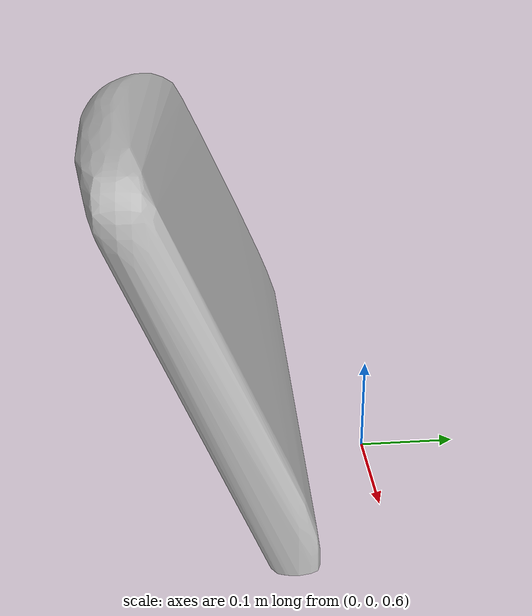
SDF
<?xml version='1.0' encoding='utf-8'?>
<sdf version="1.7">
  <model name="office_chair">
    <link name="base_link">
      <inertial>
        <mass>12.000000</mass>
        <pose>-0.000580 0.451154 -0.038870 0 0 0</pose>
        <inertia>
          <ixx>0.464690</ixx>
          <iyy>0.510248</iyy>
          <izz>0.511947</izz>
          <ixy>-0.000955</ixy>
          <ixz>-0.000490</ixz>
          <iyz>-0.038034</iyz>
        </inertia>
      </inertial>
      <visual name="visual">
        <geometry>
          <mesh>
            <uri>office_chair.gltf</uri>
          </mesh>
        </geometry>
      </visual>
      <collision name="collision_0">
        <surface>
          <friction>
            <ode>
              <mu>0.400</mu>
              <mu2>0.400</mu2>
            </ode>
          </friction>
        </surface>
        <geometry>
          <mesh>
            <uri>office_chair_collision_0.obj</uri>
          </mesh>
        </geometry>
      </collision>
      <collision name="collision_1">
        <surface>
          <friction>
            <ode>
              <mu>0.400</mu>
              <mu2>0.400</mu2>
            </ode>
          </friction>
        </surface>
        <geometry>
          <mesh>
            <uri>office_chair_collision_1.obj</uri>
          </mesh>
        </geometry>
      </collision>
      <collision name="collision_2">
        <surface>
          <friction>
            <ode>
              <mu>0.400</mu>
              <mu2>0.400</mu2>
            </ode>
          </friction>
        </surface>
        <geometry>
          <mesh>
            <uri>office_chair_collision_2.obj</uri>
          </mesh>
        </geometry>
      </collision>
      <collision name="collision_3">
        <surface>
          <friction>
            <ode>
              <mu>0.400</mu>
              <mu2>0.400</mu2>
            </ode>
          </friction>
        </surface>
        <geometry>
          <mesh>
            <uri>office_chair_collision_3.obj</uri>
          </mesh>
        </geometry>
      </collision>
      <collision name="collision_4">
        <surface>
          <friction>
            <ode>
              <mu>0.400</mu>
              <mu2>0.400</mu2>
            </ode>
          </friction>
        </surface>
        <geometry>
          <mesh>
            <uri>office_chair_collision_4.obj</uri>
          </mesh>
        </geometry>
      </collision>
      <collision name="collision_5">
        <surface>
          <friction>
            <ode>
              <mu>0.400</mu>
              <mu2>0.400</mu2>
            </ode>
          </friction>
        </surface>
        <geometry>
          <mesh>
            <uri>office_chair_collision_5.obj</uri>
          </mesh>
        </geometry>
      </collision>
      <collision name="collision_6">
        <surface>
          <friction>
            <ode>
              <mu>0.400</mu>
              <mu2>0.400</mu2>
            </ode>
          </friction>
        </surface>
        <geometry>
          <mesh>
            <uri>office_chair_collision_6.obj</uri>
          </mesh>
        </geometry>
      </collision>
      <collision name="collision_7">
        <surface>
          <friction>
            <ode>
              <mu>0.400</mu>
              <mu2>0.400</mu2>
            </ode>
          </friction>
        </surface>
        <geometry>
          <mesh>
            <uri>office_chair_collision_7.obj</uri>
          </mesh>
        </geometry>
      </collision>
      <collision name="collision_8">
        <surface>
          <friction>
            <ode>
              <mu>0.400</mu>
              <mu2>0.400</mu2>
            </ode>
          </friction>
        </surface>
        <geometry>
          <mesh>
            <uri>office_chair_collision_8.obj</uri>
          </mesh>
        </geometry>
      </collision>
      <collision name="collision_9">
        <surface>
          <friction>
            <ode>
              <mu>0.400</mu>
              <mu2>0.400</mu2>
            </ode>
          </friction>
        </surface>
        <geometry>
          <mesh>
            <uri>office_chair_collision_9.obj</uri>
          </mesh>
        </geometry>
      </collision>
      <collision name="collision_10">
        <surface>
          <friction>
            <ode>
              <mu>0.400</mu>
              <mu2>0.400</mu2>
            </ode>
          </friction>
        </surface>
        <geometry>
          <mesh>
            <uri>office_chair_collision_10.obj</uri>
          </mesh>
        </geometry>
      </collision>
      <collision name="collision_11">
        <surface>
          <friction>
            <ode>
              <mu>0.400</mu>
              <mu2>0.400</mu2>
            </ode>
          </friction>
        </surface>
        <geometry>
          <mesh>
            <uri>office_chair_collision_11.obj</uri>
          </mesh>
        </geometry>
      </collision>
      <collision name="collision_12">
        <surface>
          <friction>
            <ode>
              <mu>0.400</mu>
              <mu2>0.400</mu2>
            </ode>
          </friction>
        </surface>
        <geometry>
          <mesh>
            <uri>office_chair_collision_12.obj</uri>
          </mesh>
        </geometry>
      </collision>
      <collision name="collision_13">
        <surface>
          <friction>
            <ode>
              <mu>0.400</mu>
              <mu2>0.400</mu2>
            </ode>
          </friction>
        </surface>
        <geometry>
          <mesh>
            <uri>office_chair_collision_13.obj</uri>
          </mesh>
        </geometry>
      </collision>
      <collision name="collision_14">
        <surface>
          <friction>
            <ode>
              <mu>0.400</mu>
              <mu2>0.400</mu2>
            </ode>
          </friction>
        </surface>
        <geometry>
          <mesh>
            <uri>office_chair_collision_14.obj</uri>
          </mesh>
        </geometry>
      </collision>
      <collision name="collision_15">
        <surface>
          <friction>
            <ode>
              <mu>0.400</mu>
              <mu2>0.400</mu2>
            </ode>
          </friction>
        </surface>
        <geometry>
          <mesh>
            <uri>office_chair_collision_15.obj</uri>
          </mesh>
        </geometry>
      </collision>
      <collision name="collision_16">
        <surface>
          <friction>
            <ode>
              <mu>0.400</mu>
              <mu2>0.400</mu2>
            </ode>
          </friction>
        </surface>
        <geometry>
          <mesh>
            <uri>office_chair_collision_16.obj</uri>
          </mesh>
        </geometry>
      </collision>
      <collision name="collision_17">
        <surface>
          <friction>
            <ode>
              <mu>0.400</mu>
              <mu2>0.400</mu2>
            </ode>
          </friction>
        </surface>
        <geometry>
          <mesh>
            <uri>office_chair_collision_17.obj</uri>
          </mesh>
        </geometry>
      </collision>
      <collision name="collision_18">
        <surface>
          <friction>
            <ode>
              <mu>0.400</mu>
              <mu2>0.400</mu2>
            </ode>
          </friction>
        </surface>
        <geometry>
          <mesh>
            <uri>office_chair_collision_18.obj</uri>
          </mesh>
        </geometry>
      </collision>
      <collision name="collision_19">
        <surface>
          <friction>
            <ode>
              <mu>0.400</mu>
              <mu2>0.400</mu2>
            </ode>
          </friction>
        </surface>
        <geometry>
          <mesh>
            <uri>office_chair_collision_19.obj</uri>
          </mesh>
        </geometry>
      </collision>
    </link>
  </model>
</sdf>
